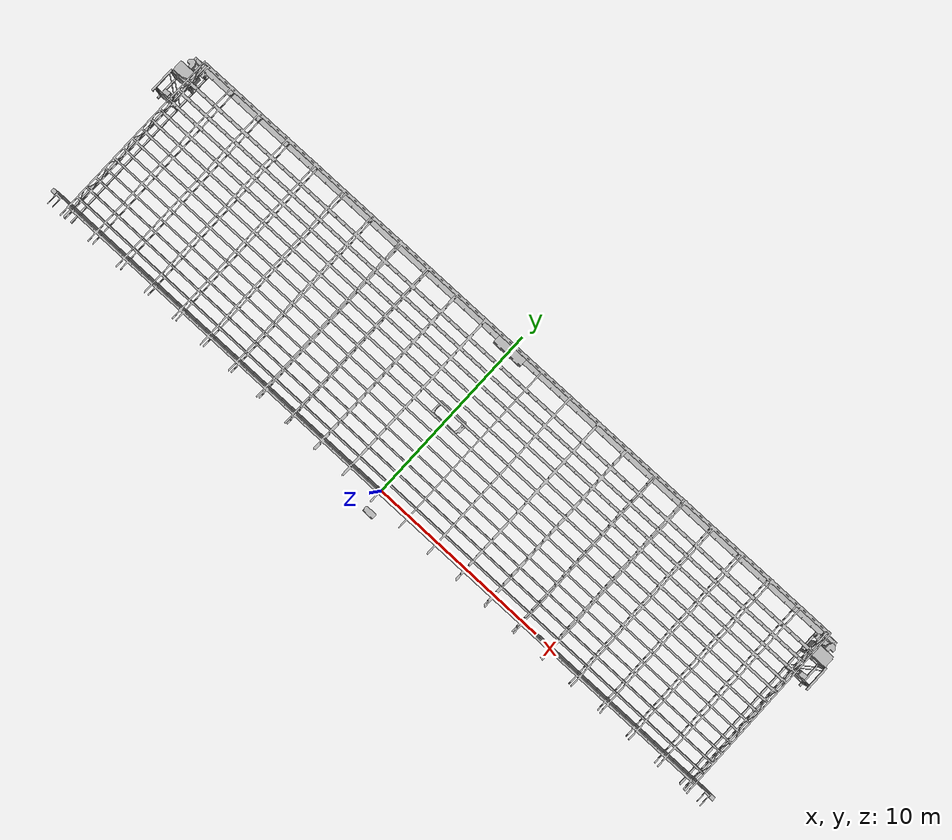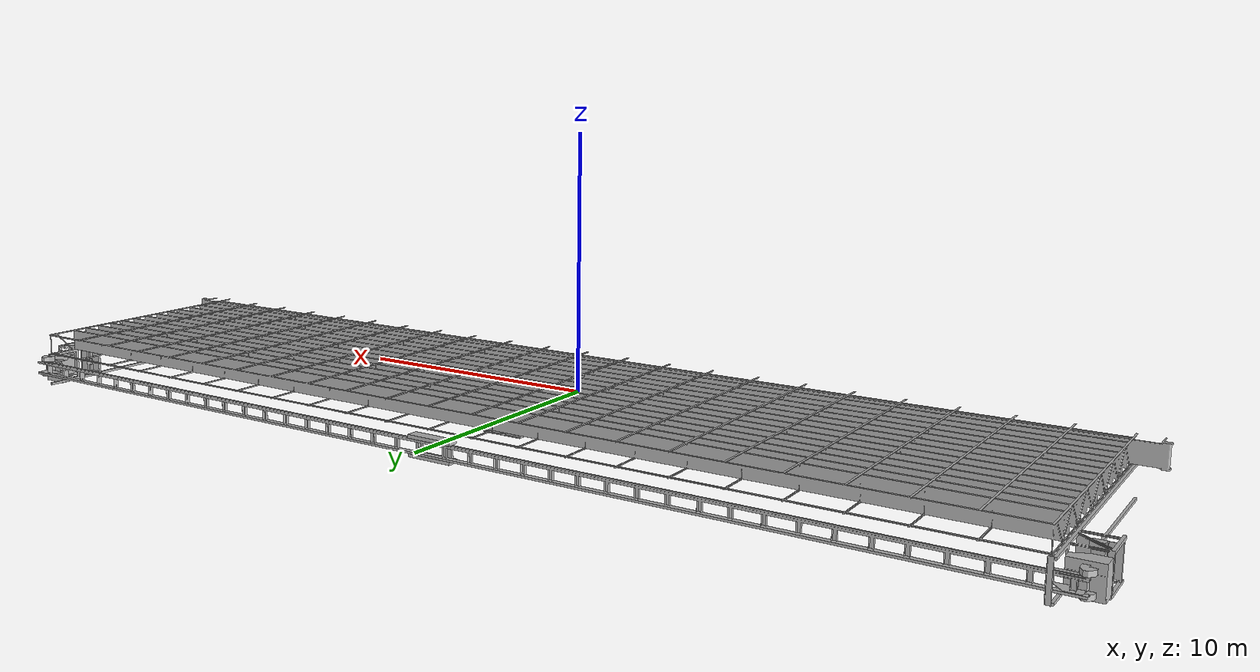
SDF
<sdf version='1.7'>
  <model name='shelf_final'>
    <link name='base_link'>
      <inertial>
        <pose>-0.030933 4.00784 -0.011365 0 -0 0</pose>
        <mass>15769.4</mass>
        <inertia>
          <ixx>74236.4</ixx>
          <ixy>1602.61</ixy>
          <ixz>1401.86</ixz>
          <iyy>1.40458e+06</iyy>
          <iyz>703.014</iyz>
          <izz>1.44711e+06</izz>
        </inertia>
      </inertial>
      <collision name='base_link_collision'>
        <pose>0 0 0 0 -0 0</pose>
        <geometry>
          <mesh>
            <scale>1 1 1</scale>
            <uri>model://shelf_final/meshes/base_link.STL</uri>
          </mesh>
        </geometry>
      </collision>
      <collision name='base_link_fixed_joint_lump__R02_2_collision_1'>
        <pose>0 0 0 0 -0 0</pose>
        <geometry>
          <mesh>
            <scale>1 1 1</scale>
            <uri>model://shelf_final/meshes/R02_2.STL</uri>
          </mesh>
        </geometry>
      </collision>
      <collision name='base_link_fixed_joint_lump__bank1_collision_2'>
        <pose>0 0 0 0 -0 0</pose>
        <geometry>
          <mesh>
            <scale>1 1 1</scale>
            <uri>model://shelf_final/meshes/bank1.STL</uri>
          </mesh>
        </geometry>
      </collision>
      <collision name='base_link_fixed_joint_lump__bank3_collision_3'>
        <pose>0 0 0 0 -0 0</pose>
        <geometry>
          <mesh>
            <scale>1 1 1</scale>
            <uri>model://shelf_final/meshes/bank3.STL</uri>
          </mesh>
        </geometry>
      </collision>
      <collision name='base_link_fixed_joint_lump__bank4_collision_4'>
        <pose>0 0 0 0 -0 0</pose>
        <geometry>
          <mesh>
            <scale>1 1 1</scale>
            <uri>model://shelf_final/meshes/bank4.STL</uri>
          </mesh>
        </geometry>
      </collision>
      <collision name='base_link_fixed_joint_lump__bank2_collision_5'>
        <pose>0 0 0 0 -0 0</pose>
        <geometry>
          <mesh>
            <scale>1 1 1</scale>
            <uri>model://shelf_final/meshes/bank2.STL</uri>
          </mesh>
        </geometry>
      </collision>
      <collision name='base_link_fixed_joint_lump__part7_1_collision_6'>
        <pose>0 0 0 0 -0 0</pose>
        <geometry>
          <mesh>
            <scale>1 1 1</scale>
            <uri>model://shelf_final/meshes/part7_1.STL</uri>
          </mesh>
        </geometry>
      </collision>
      <collision name='base_link_fixed_joint_lump__part7_2_collision_7'>
        <pose>0 0 0 0 -0 0</pose>
        <geometry>
          <mesh>
            <scale>1 1 1</scale>
            <uri>model://shelf_final/meshes/part7_2.STL</uri>
          </mesh>
        </geometry>
      </collision>
      <collision name='base_link_fixed_joint_lump__roof_rack2_collision_8'>
        <pose>0 0 0 0 -0 0</pose>
        <geometry>
          <mesh>
            <scale>1 1 1</scale>
            <uri>model://shelf_final/meshes/roof_rack2.STL</uri>
          </mesh>
        </geometry>
      </collision>
      <collision name='base_link_fixed_joint_lump__roof_rack_collision_9'>
        <pose>0 0 0 0 -0 0</pose>
        <geometry>
          <mesh>
            <scale>1 1 1</scale>
            <uri>model://shelf_final/meshes/roof_rack.STL</uri>
          </mesh>
        </geometry>
      </collision>
      <collision name='base_link_fixed_joint_lump__ss_1_collision_10'>
        <pose>0 0 0 0 -0 0</pose>
        <geometry>
          <mesh>
            <scale>1 1 1</scale>
            <uri>model://shelf_final/meshes/ss_1.STL</uri>
          </mesh>
        </geometry>
      </collision>
      <collision name='base_link_fixed_joint_lump__ss_2_collision_11'>
        <pose>0 0 0 0 -0 0</pose>
        <geometry>
          <mesh>
            <scale>1 1 1</scale>
            <uri>model://shelf_final/meshes/ss_2.STL</uri>
          </mesh>
        </geometry>
      </collision>
      <collision name='base_link_fixed_joint_lump__traction1_collision_12'>
        <pose>0 0 0 0 -0 0</pose>
        <geometry>
          <mesh>
            <scale>1 1 1</scale>
            <uri>model://shelf_final/meshes/traction1.STL</uri>
          </mesh>
        </geometry>
      </collision>
      <collision name='base_link_fixed_joint_lump__traction2_collision_13'>
        <pose>0 0 0 0 -0 0</pose>
        <geometry>
          <mesh>
            <scale>1 1 1</scale>
            <uri>model://shelf_final/meshes/traction2.STL</uri>
          </mesh>
        </geometry>
      </collision>
      <visual name='base_link_visual'>
        <pose>0 0 0 0 -0 0</pose>
        <geometry>
          <mesh>
            <scale>1 1 1</scale>
            <uri>model://shelf_final/meshes/base_link.STL</uri>
          </mesh>
        </geometry>
      </visual>
      <visual name='base_link_fixed_joint_lump__R02_2_visual_1'>
        <pose>0 0 0 0 -0 0</pose>
        <geometry>
          <mesh>
            <scale>1 1 1</scale>
            <uri>model://shelf_final/meshes/R02_2.STL</uri>
          </mesh>
        </geometry>
      </visual>
      <visual name='base_link_fixed_joint_lump__bank1_visual_2'>
        <pose>0 0 0 0 -0 0</pose>
        <geometry>
          <mesh>
            <scale>1 1 1</scale>
            <uri>model://shelf_final/meshes/bank1.STL</uri>
          </mesh>
        </geometry>
      </visual>
      <visual name='base_link_fixed_joint_lump__bank3_visual_3'>
        <pose>0 0 0 0 -0 0</pose>
        <geometry>
          <mesh>
            <scale>1 1 1</scale>
            <uri>model://shelf_final/meshes/bank3.STL</uri>
          </mesh>
        </geometry>
      </visual>
      <visual name='base_link_fixed_joint_lump__bank4_visual_4'>
        <pose>0 0 0 0 -0 0</pose>
        <geometry>
          <mesh>
            <scale>1 1 1</scale>
            <uri>model://shelf_final/meshes/bank4.STL</uri>
          </mesh>
        </geometry>
      </visual>
      <visual name='base_link_fixed_joint_lump__bank2_visual_5'>
        <pose>0 0 0 0 -0 0</pose>
        <geometry>
          <mesh>
            <scale>1 1 1</scale>
            <uri>model://shelf_final/meshes/bank2.STL</uri>
          </mesh>
        </geometry>
      </visual>
      <visual name='base_link_fixed_joint_lump__part7_1_visual_6'>
        <pose>0 0 0 0 -0 0</pose>
        <geometry>
          <mesh>
            <scale>1 1 1</scale>
            <uri>model://shelf_final/meshes/part7_1.STL</uri>
          </mesh>
        </geometry>
      </visual>
      <visual name='base_link_fixed_joint_lump__part7_2_visual_7'>
        <pose>0 0 0 0 -0 0</pose>
        <geometry>
          <mesh>
            <scale>1 1 1</scale>
            <uri>model://shelf_final/meshes/part7_2.STL</uri>
          </mesh>
        </geometry>
      </visual>
      <visual name='base_link_fixed_joint_lump__roof_rack2_visual_8'>
        <pose>0 0 0 0 -0 0</pose>
        <geometry>
          <mesh>
            <scale>1 1 1</scale>
            <uri>model://shelf_final/meshes/roof_rack2.STL</uri>
          </mesh>
        </geometry>
      </visual>
      <visual name='base_link_fixed_joint_lump__roof_rack_visual_9'>
        <pose>0 0 0 0 -0 0</pose>
        <geometry>
          <mesh>
            <scale>1 1 1</scale>
            <uri>model://shelf_final/meshes/roof_rack.STL</uri>
          </mesh>
        </geometry>
      </visual>
      <visual name='base_link_fixed_joint_lump__ss_1_visual_10'>
        <pose>0 0 0 0 -0 0</pose>
        <geometry>
          <mesh>
            <scale>1 1 1</scale>
            <uri>model://shelf_final/meshes/ss_1.STL</uri>
          </mesh>
        </geometry>
      </visual>
      <visual name='base_link_fixed_joint_lump__ss_2_visual_11'>
        <pose>0 0 0 0 -0 0</pose>
        <geometry>
          <mesh>
            <scale>1 1 1</scale>
            <uri>model://shelf_final/meshes/ss_2.STL</uri>
          </mesh>
        </geometry>
      </visual>
      <visual name='base_link_fixed_joint_lump__traction1_visual_12'>
        <pose>0 0 0 0 -0 0</pose>
        <geometry>
          <mesh>
            <scale>1 1 1</scale>
            <uri>model://shelf_final/meshes/traction1.STL</uri>
          </mesh>
        </geometry>
      </visual>
      <visual name='base_link_fixed_joint_lump__traction2_visual_13'>
        <pose>0 0 0 0 -0 0</pose>
        <geometry>
          <mesh>
            <scale>1 1 1</scale>
            <uri>model://shelf_final/meshes/traction2.STL</uri>
          </mesh>
        </geometry>
      </visual>
    </link>
    <joint name='trolley_joint' type='prismatic'>
      <pose relative_to='base_link'>-0.013045 8.8907 -0.036671 0 -0 0</pose>
      <parent>base_link</parent>
      <child>trolley</child>
      <axis>
        <xyz>-1 0 0</xyz>
        <limit>
          <lower>-50</lower>
          <upper>50</upper>
        </limit>
        <dynamics>
          <spring_reference>0</spring_reference>
          <spring_stiffness>0</spring_stiffness>
        </dynamics>
      </axis>
    </joint>
    <link name='trolley'>
      <pose relative_to='trolley_joint'>0 0 0 0 -0 0</pose>
      <inertial>
        <pose>0 0.20546 -0 0 -0 0</pose>
        <mass>3.98</mass>
        <inertia>
          <ixx>24.976</ixx>
          <ixy>1.9995e-16</ixy>
          <ixz>-4.452e-15</ixz>
          <iyy>83.309</iyy>
          <iyz>-4.7011e-16</iyz>
          <izz>64.945</izz>
        </inertia>
      </inertial>
      <collision name='trolley_collision'>
        <pose>0 0 0 0 -0 0</pose>
        <geometry>
          <mesh>
            <scale>1 1 1</scale>
            <uri>model://shelf_final/meshes/trolley.STL</uri>
          </mesh>
        </geometry>
      </collision>
      <visual name='trolley_visual'>
        <pose>0 0 0 0 -0 0</pose>
        <geometry>
          <mesh>
            <scale>1 1 1</scale>
            <uri>model://shelf_final/meshes/trolley.STL</uri>
          </mesh>
        </geometry>
      </visual>
    </link>
    <joint name='carriage_joint' type='prismatic'>
      <pose relative_to='trolley'>0 -4.5358 0 0 -0 0</pose>
      <parent>trolley</parent>
      <child>carriage</child>
      <axis>
        <xyz>0 1 0</xyz>
        <limit>
          <lower>-50</lower>
          <upper>50</upper>
        </limit>
        <dynamics>
          <spring_reference>0</spring_reference>
          <spring_stiffness>0</spring_stiffness>
        </dynamics>
      </axis>
    </joint>
    <link name='carriage'>
      <pose relative_to='carriage_joint'>0 0 0 0 -0 0</pose>
      <inertial>
        <pose>0.041968 0.30521 0.000222 0 -0 0</pose>
        <mass>4.85</mass>
        <inertia>
          <ixx>59.409</ixx>
          <ixy>3.9487e-14</ixy>
          <ixz>1.8761e-14</ixz>
          <iyy>141.75</iyy>
          <iyz>2.0147e-14</iyz>
          <izz>134.72</izz>
        </inertia>
      </inertial>
      <collision name='carriage_collision'>
        <pose>0 0 0 0 -0 0</pose>
        <geometry>
          <mesh>
            <scale>1 1 1</scale>
            <uri>model://shelf_final/meshes/carriage.STL</uri>
          </mesh>
        </geometry>
      </collision>
      <visual name='carriage_visual'>
        <pose>0 0 0 0 -0 0</pose>
        <geometry>
          <mesh>
            <scale>1 1 1</scale>
            <uri>model://shelf_final/meshes/carriage.STL</uri>
          </mesh>
        </geometry>
      </visual>
    </link>
  </model>
</sdf>
